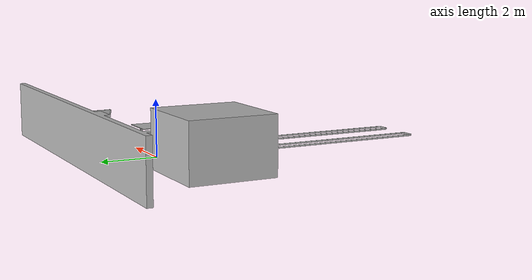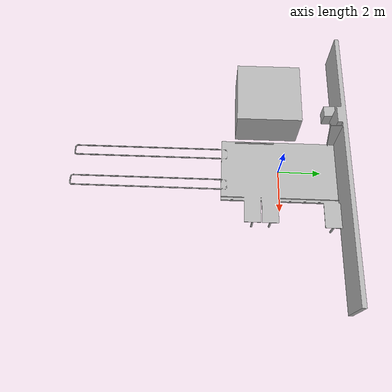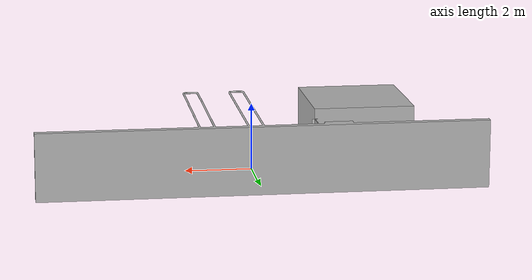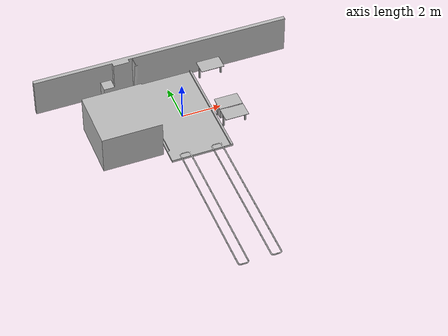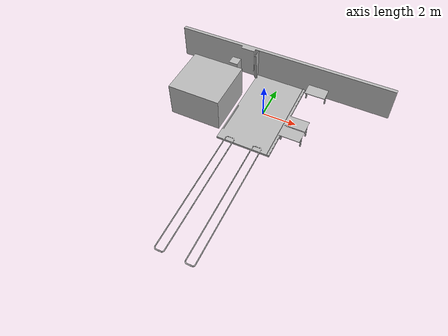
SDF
<?xml version="1.0" ?>
<sdf version="1.6">
  <model name="lab">
    <static>true</static>
    <link name="link">
      <visual name="visual">
        <geometry>
          <mesh>
            <scale>1 1 1</scale>
            <uri>model://lab/meshes/lab.STL</uri>
          </mesh>
        </geometry>
      </visual>

      <collision name="collision">
        <geometry>
          <mesh>
            <scale>1 1 1</scale>
            <uri>model://lab/meshes/lab.STL</uri>
          </mesh>
        </geometry>
      </collision>

    </link>
  </model>
</sdf>
